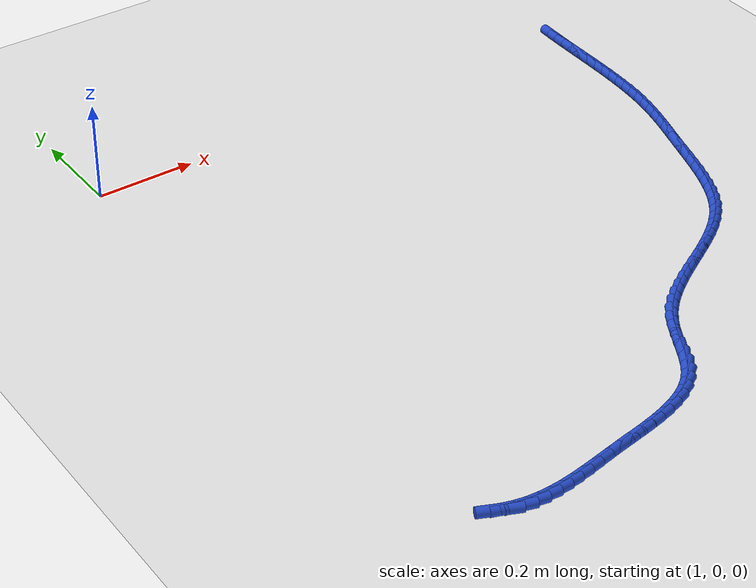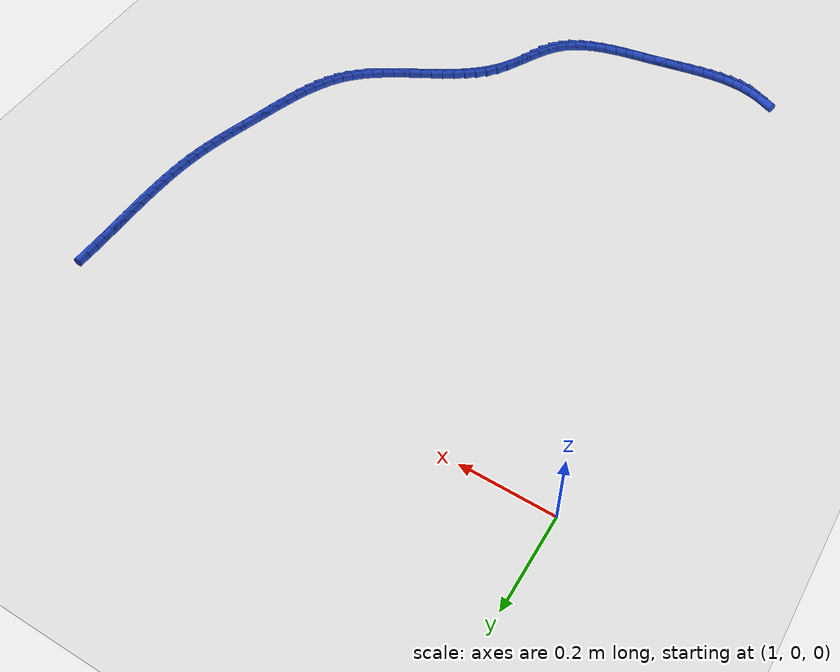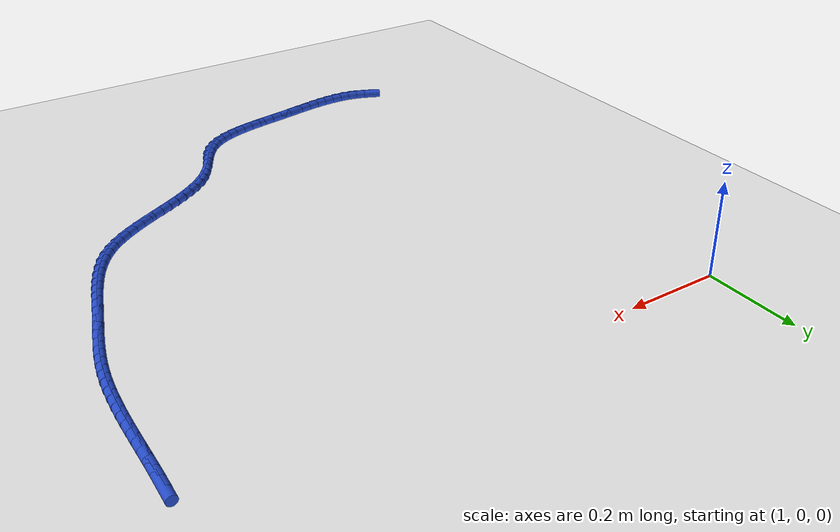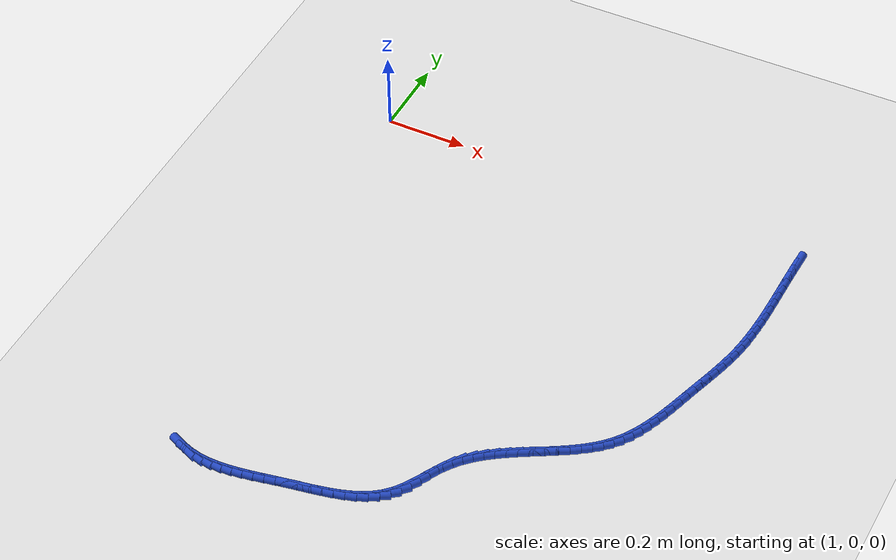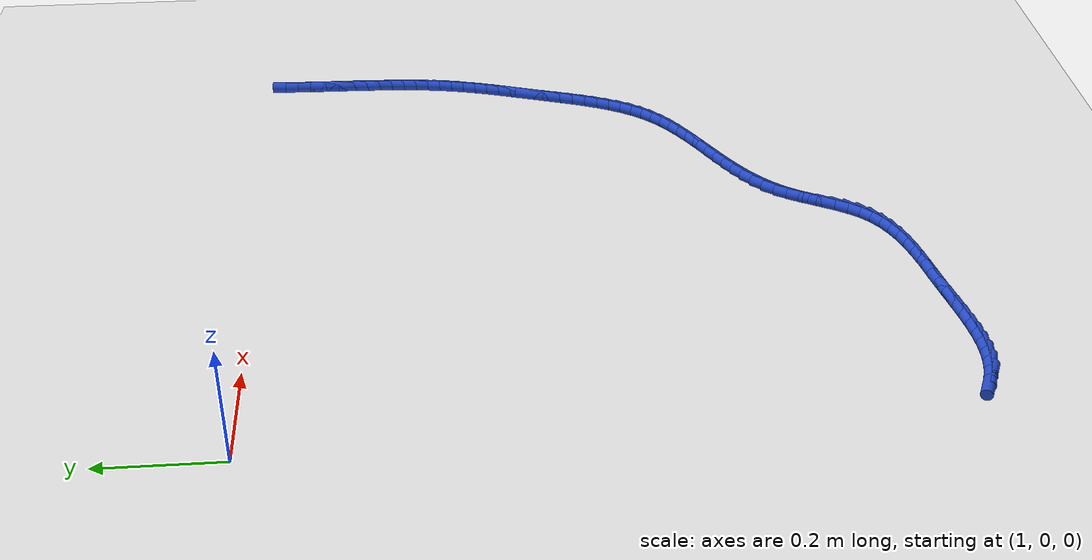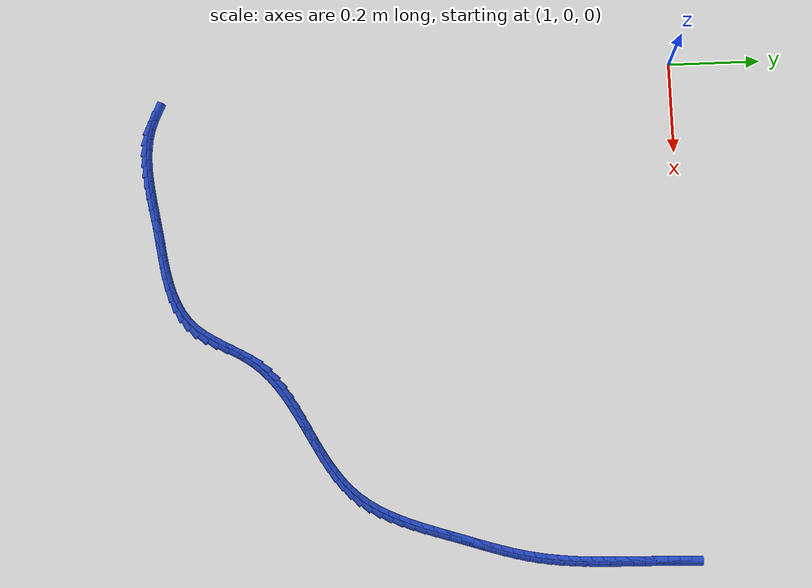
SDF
<sdf version="1.6">
 <world name="default">
  <model name="ground_plane">
   <static>1</static>
   <link name="link">
    <collision name="collision">
     <geometry><plane><normal>0 0 1</normal><size>100 100</size></plane></geometry>
     <surface><friction><ode><mu>100</mu><mu2>50</mu2></ode></friction></surface>
    </collision>
    <visual name="visual">
     <cast_shadows>0</cast_shadows>
     <geometry><plane><normal>0 0 1</normal><size>100 100</size></plane></geometry>
     <material>
      <script><uri>file://media/materials/scripts/gazebo.material</uri><name>Gazebo/WhiteGlow</name></script>
     </material>
    </visual>
   </link>
  </model>
  <model name="line">
   <link name="link_139">
    <pose>2.0775391839590873 -0.03220333190274801 0.01 0 1.57 1.5355002800685045</pose>
    <collision name="collision">
     <geometry><cylinder><radius>0.01</radius><length>0.08</length></cylinder></geometry>
    </collision>
    <visual name="visual">
     <material>
      <script><name>Gazebo/Blue</name><uri>file://media/materials/scripts/gazebo.material</uri></script>
     </material>
     <geometry><cylinder><radius>0.01</radius><length>0.08</length></cylinder></geometry>
    </visual>
   </link>
   <link name="link_140">
    <pose>2.076674300582202 -0.05669684511033682 0.01 0 1.57 1.545032274725076</pose>
    <collision name="collision">
     <geometry><cylinder><radius>0.01</radius><length>0.08</length></cylinder></geometry>
    </collision>
    <visual name="visual">
     <material>
      <script><name>Gazebo/Blue</name><uri>file://media/materials/scripts/gazebo.material</uri></script>
     </material>
     <geometry><cylinder><radius>0.01</radius><length>0.08</length></cylinder></geometry>
    </visual>
   </link>
   <link name="link_141">
    <pose>2.0760451497285883 -0.08111115845253375 0.01 0 1.57 1.5508849439960424</pose>
    <collision name="collision">
     <geometry><cylinder><radius>0.01</radius><length>0.08</length></cylinder></geometry>
    </collision>
    <visual name="visual">
     <material>
      <script><name>Gazebo/Blue</name><uri>file://media/materials/scripts/gazebo.material</uri></script>
     </material>
     <geometry><cylinder><radius>0.01</radius><length>0.08</length></cylinder></geometry>
    </visual>
   </link>
   <link name="link_142">
    <pose>2.0755606096063643 -0.10544277275186079 0.01 0 1.57 1.553019532442318</pose>
    <collision name="collision">
     <geometry><cylinder><radius>0.01</radius><length>0.08</length></cylinder></geometry>
    </collision>
    <visual name="visual">
     <material>
      <script><name>Gazebo/Blue</name><uri>file://media/materials/scripts/gazebo.material</uri></script>
     </material>
     <geometry><cylinder><radius>0.01</radius><length>0.08</length></cylinder></geometry>
    </visual>
   </link>
   <link name="link_143">
    <pose>2.0751295584236495 -0.1296881888308394 0.01 0 1.57 1.551396149108338</pose>
    <collision name="collision">
     <geometry><cylinder><radius>0.01</radius><length>0.08</length></cylinder></geometry>
    </collision>
    <visual name="visual">
     <material>
      <script><name>Gazebo/Blue</name><uri>file://media/materials/scripts/gazebo.material</uri></script>
     </material>
     <geometry><cylinder><radius>0.01</radius><length>0.08</length></cylinder></geometry>
    </visual>
   </link>
   <link name="link_144">
    <pose>2.0746608743885617 -0.15384390751199115 0.01 0 1.57 1.54597282921778</pose>
    <collision name="collision">
     <geometry><cylinder><radius>0.01</radius><length>0.08</length></cylinder></geometry>
    </collision>
    <visual name="visual">
     <material>
      <script><name>Gazebo/Blue</name><uri>file://media/materials/scripts/gazebo.material</uri></script>
     </material>
     <geometry><cylinder><radius>0.01</radius><length>0.08</length></cylinder></geometry>
    </visual>
   </link>
   <link name="link_145">
    <pose>2.0740634357092205 -0.1779064296178375 0.01 0 1.57 1.5367061824393409</pose>
    <collision name="collision">
     <geometry><cylinder><radius>0.01</radius><length>0.08</length></cylinder></geometry>
    </collision>
    <visual name="visual">
     <material>
      <script><name>Gazebo/Blue</name><uri>file://media/materials/scripts/gazebo.material</uri></script>
     </material>
     <geometry><cylinder><radius>0.01</radius><length>0.08</length></cylinder></geometry>
    </visual>
   </link>
   <link name="link_146">
    <pose>2.073246120593743 -0.20187225597090072 0.01 0 1.57 1.5235537550019442</pose>
    <collision name="collision">
     <geometry><cylinder><radius>0.01</radius><length>0.08</length></cylinder></geometry>
    </collision>
    <visual name="visual">
     <material>
      <script><name>Gazebo/Blue</name><uri>file://media/materials/scripts/gazebo.material</uri></script>
     </material>
     <geometry><cylinder><radius>0.01</radius><length>0.08</length></cylinder></geometry>
    </visual>
   </link>
   <link name="link_147">
    <pose>2.0721178072502493 -0.22573788739370096 0.01 0 1.57 1.5064782374561976</pose>
    <collision name="collision">
     <geometry><cylinder><radius>0.01</radius><length>0.08</length></cylinder></geometry>
    </collision>
    <visual name="visual">
     <material>
      <script><name>Gazebo/Blue</name><uri>file://media/materials/scripts/gazebo.material</uri></script>
     </material>
     <geometry><cylinder><radius>0.01</radius><length>0.08</length></cylinder></geometry>
    </visual>
   </link>
   <link name="link_148">
    <pose>2.070587373886858 -0.24949982470876042 0.01 0 1.57 1.485453626714104</pose>
    <collision name="collision">
     <geometry><cylinder><radius>0.01</radius><length>0.08</length></cylinder></geometry>
    </collision>
    <visual name="visual">
     <material>
      <script><name>Gazebo/Blue</name><uri>file://media/materials/scripts/gazebo.material</uri></script>
     </material>
     <geometry><cylinder><radius>0.01</radius><length>0.08</length></cylinder></geometry>
    </visual>
   </link>
   <link name="link_149">
    <pose>2.0685636987116873 -0.2731545687386006 0.01 0 1.57 1.4604733762494457</pose>
    <collision name="collision">
     <geometry><cylinder><radius>0.01</radius><length>0.08</length></cylinder></geometry>
    </collision>
    <visual name="visual">
     <material>
      <script><name>Gazebo/Blue</name><uri>file://media/materials/scripts/gazebo.material</uri></script>
     </material>
     <geometry><cylinder><radius>0.01</radius><length>0.08</length></cylinder></geometry>
    </visual>
   </link>
   <link name="link_150">
    <pose>2.0659556599328552 -0.296698620305743 0.01 0 1.57 1.4315604168281433</pose>
    <collision name="collision">
     <geometry><cylinder><radius>0.01</radius><length>0.08</length></cylinder></geometry>
    </collision>
    <visual name="visual">
     <material>
      <script><name>Gazebo/Blue</name><uri>file://media/materials/scripts/gazebo.material</uri></script>
     </material>
     <geometry><cylinder><radius>0.01</radius><length>0.08</length></cylinder></geometry>
    </visual>
   </link>
   <link name="link_151">
    <pose>2.0626721357584814 -0.32012848023270923 0.01 0 1.57 1.3987786811830403</pose>
    <collision name="collision">
     <geometry><cylinder><radius>0.01</radius><length>0.08</length></cylinder></geometry>
    </collision>
    <visual name="visual">
     <material>
      <script><name>Gazebo/Blue</name><uri>file://media/materials/scripts/gazebo.material</uri></script>
     </material>
     <geometry><cylinder><radius>0.01</radius><length>0.08</length></cylinder></geometry>
    </visual>
   </link>
   <link name="link_152">
    <pose>2.0586220043966845 -0.3434406493420209 0.01 0 1.57 1.3626208358620544</pose>
    <collision name="collision">
     <geometry><cylinder><radius>0.01</radius><length>0.08</length></cylinder></geometry>
    </collision>
    <visual name="visual">
     <material>
      <script><name>Gazebo/Blue</name><uri>file://media/materials/scripts/gazebo.material</uri></script>
     </material>
     <geometry><cylinder><radius>0.01</radius><length>0.08</length></cylinder></geometry>
    </visual>
   </link>
   <link name="link_153">
    <pose>2.053722782564876 -0.36663379234015386 0.01 0 1.57 1.3287862352375683</pose>
    <collision name="collision">
     <geometry><cylinder><radius>0.01</radius><length>0.08</length></cylinder></geometry>
    </collision>
    <visual name="visual">
     <material>
      <script><name>Gazebo/Blue</name><uri>file://media/materials/scripts/gazebo.material</uri></script>
     </material>
     <geometry><cylinder><radius>0.01</radius><length>0.08</length></cylinder></geometry>
    </visual>
   </link>
   <link name="link_154">
    <pose>2.0480194273327155 -0.38973849681796874 0.01 0 1.57 1.3015933561688129</pose>
    <collision name="collision">
     <geometry><cylinder><radius>0.01</radius><length>0.08</length></cylinder></geometry>
    </collision>
    <visual name="visual">
     <material>
      <script><name>Gazebo/Blue</name><uri>file://media/materials/scripts/gazebo.material</uri></script>
     </material>
     <geometry><cylinder><radius>0.01</radius><length>0.08</length></cylinder></geometry>
    </visual>
   </link>
   <link name="link_155">
    <pose>2.04165407835824 -0.41280969390020805 0.01 0 1.57 1.2811367406665357</pose>
    <collision name="collision">
     <geometry><cylinder><radius>0.01</radius><length>0.08</length></cylinder></geometry>
    </collision>
    <visual name="visual">
     <material>
      <script><name>Gazebo/Blue</name><uri>file://media/materials/scripts/gazebo.material</uri></script>
     </material>
     <geometry><cylinder><radius>0.01</radius><length>0.08</length></cylinder></geometry>
    </visual>
   </link>
   <link name="link_156">
    <pose>2.0347713225355504 -0.4359029277265058 0.01 0 1.57 1.2673337371733688</pose>
    <collision name="collision">
     <geometry><cylinder><radius>0.01</radius><length>0.08</length></cylinder></geometry>
    </collision>
    <visual name="visual">
     <material>
      <script><name>Gazebo/Blue</name><uri>file://media/materials/scripts/gazebo.material</uri></script>
     </material>
     <geometry><cylinder><radius>0.01</radius><length>0.08</length></cylinder></geometry>
    </visual>
   </link>
   <link name="link_157">
    <pose>2.0275157467587466 -0.4590737424364981 0.01 0 1.57 1.2600603318563652</pose>
    <collision name="collision">
     <geometry><cylinder><radius>0.01</radius><length>0.08</length></cylinder></geometry>
    </collision>
    <visual name="visual">
     <material>
      <script><name>Gazebo/Blue</name><uri>file://media/materials/scripts/gazebo.material</uri></script>
     </material>
     <geometry><cylinder><radius>0.01</radius><length>0.08</length></cylinder></geometry>
    </visual>
   </link>
   <link name="link_158">
    <pose>2.0200319379219294 -0.4823776821698201 0.01 0 1.57 1.2591708801061767</pose>
    <collision name="collision">
     <geometry><cylinder><radius>0.01</radius><length>0.08</length></cylinder></geometry>
    </collision>
    <visual name="visual">
     <material>
      <script><name>Gazebo/Blue</name><uri>file://media/materials/scripts/gazebo.material</uri></script>
     </material>
     <geometry><cylinder><radius>0.01</radius><length>0.08</length></cylinder></geometry>
    </visual>
   </link>
   <link name="link_159">
    <pose>2.0124644829191993 -0.5058702910661071 0.01 0 1.57 1.2622192892705426</pose>
    <collision name="collision">
     <geometry><cylinder><radius>0.01</radius><length>0.08</length></cylinder></geometry>
    </collision>
    <visual name="visual">
     <material>
      <script><name>Gazebo/Blue</name><uri>file://media/materials/scripts/gazebo.material</uri></script>
     </material>
     <geometry><cylinder><radius>0.01</radius><length>0.08</length></cylinder></geometry>
    </visual>
   </link>
   <link name="link_160">
    <pose>2.004909489875562 -0.5295715424775642 0.01 0 1.57 1.258407226383134</pose>
    <collision name="collision">
     <geometry><cylinder><radius>0.01</radius><length>0.08</length></cylinder></geometry>
    </collision>
    <visual name="visual">
     <material>
      <script><name>Gazebo/Blue</name><uri>file://media/materials/scripts/gazebo.material</uri></script>
     </material>
     <geometry><cylinder><radius>0.01</radius><length>0.08</length></cylinder></geometry>
    </visual>
   </link>
   <link name="link_161">
    <pose>1.9972350444321931 -0.5533341006548441 0.01 0 1.57 1.2445957591847026</pose>
    <collision name="collision">
     <geometry><cylinder><radius>0.01</radius><length>0.08</length></cylinder></geometry>
    </collision>
    <visual name="visual">
     <material>
      <script><name>Gazebo/Blue</name><uri>file://media/materials/scripts/gazebo.material</uri></script>
     </material>
     <geometry><cylinder><radius>0.01</radius><length>0.08</length></cylinder></geometry>
    </visual>
   </link>
   <link name="link_162">
    <pose>1.9892422512758807 -0.5769614832771217 0.01 0 1.57 1.2205522472653871</pose>
    <collision name="collision">
     <geometry><cylinder><radius>0.01</radius><length>0.08</length></cylinder></geometry>
    </collision>
    <visual name="visual">
     <material>
      <script><name>Gazebo/Blue</name><uri>file://media/materials/scripts/gazebo.material</uri></script>
     </material>
     <geometry><cylinder><radius>0.01</radius><length>0.08</length></cylinder></geometry>
    </visual>
   </link>
   <link name="link_163">
    <pose>1.9807322061201604 -0.600257201439544 0.01 0 1.57 1.1857856594052478</pose>
    <collision name="collision">
     <geometry><cylinder><radius>0.01</radius><length>0.08</length></cylinder></geometry>
    </collision>
    <visual name="visual">
     <material>
      <script><name>Gazebo/Blue</name><uri>file://media/materials/scripts/gazebo.material</uri></script>
     </material>
     <geometry><cylinder><radius>0.01</radius><length>0.08</length></cylinder></geometry>
    </visual>
   </link>
   <link name="link_164">
    <pose>1.9715060046785686 -0.6230247662372582 0.01 0 1.57 1.139600762035238</pose>
    <collision name="collision">
     <geometry><cylinder><radius>0.01</radius><length>0.08</length></cylinder></geometry>
    </collision>
    <visual name="visual">
     <material>
      <script><name>Gazebo/Blue</name><uri>file://media/materials/scripts/gazebo.material</uri></script>
     </material>
     <geometry><cylinder><radius>0.01</radius><length>0.08</length></cylinder></geometry>
    </visual>
   </link>
   <link name="link_165">
    <pose>1.9613647426646423 -0.6450676887654099 0.01 0 1.57 1.0811976610575593</pose>
    <collision name="collision">
     <geometry><cylinder><radius>0.01</radius><length>0.08</length></cylinder></geometry>
    </collision>
    <visual name="visual">
     <material>
      <script><name>Gazebo/Blue</name><uri>file://media/materials/scripts/gazebo.material</uri></script>
     </material>
     <geometry><cylinder><radius>0.01</radius><length>0.08</length></cylinder></geometry>
    </visual>
   </link>
   <link name="link_166">
    <pose>1.950109515791918 -0.6661894801191464 0.01 0 1.57 1.0098463058577707</pose>
    <collision name="collision">
     <geometry><cylinder><radius>0.01</radius><length>0.08</length></cylinder></geometry>
    </collision>
    <visual name="visual">
     <material>
      <script><name>Gazebo/Blue</name><uri>file://media/materials/scripts/gazebo.material</uri></script>
     </material>
     <geometry><cylinder><radius>0.01</radius><length>0.08</length></cylinder></geometry>
    </visual>
   </link>
   <link name="link_167">
    <pose>1.9375414197739327 -0.6861936513936149 0.01 0 1.57 0.9251645269403953</pose>
    <collision name="collision">
     <geometry><cylinder><radius>0.01</radius><length>0.08</length></cylinder></geometry>
    </collision>
    <visual name="visual">
     <material>
      <script><name>Gazebo/Blue</name><uri>file://media/materials/scripts/gazebo.material</uri></script>
     </material>
     <geometry><cylinder><radius>0.01</radius><length>0.08</length></cylinder></geometry>
    </visual>
   </link>
   <link name="link_168">
    <pose>1.9234615503242205 -0.7048837136839615 0.01 0 1.57 0.8289185407658971</pose>
    <collision name="collision">
     <geometry><cylinder><radius>0.01</radius><length>0.08</length></cylinder></geometry>
    </collision>
    <visual name="visual">
     <material>
      <script><name>Gazebo/Blue</name><uri>file://media/materials/scripts/gazebo.material</uri></script>
     </material>
     <geometry><cylinder><radius>0.01</radius><length>0.08</length></cylinder></geometry>
    </visual>
   </link>
   <link name="link_169">
    <pose>1.9076949464159982 -0.7220860446262474 0.01 0 1.57 0.737883611921408</pose>
    <collision name="collision">
     <geometry><cylinder><radius>0.01</radius><length>0.08</length></cylinder></geometry>
    </collision>
    <visual name="visual">
     <material>
      <script><name>Gazebo/Blue</name><uri>file://media/materials/scripts/gazebo.material</uri></script>
     </material>
     <geometry><cylinder><radius>0.01</radius><length>0.08</length></cylinder></geometry>
    </visual>
   </link>
   <link name="link_170">
    <pose>1.8903278553949685 -0.7378764837935013 0.01 0 1.57 0.6626194449607979</pose>
    <collision name="collision">
     <geometry><cylinder><radius>0.01</radius><length>0.08</length></cylinder></geometry>
    </collision>
    <visual name="visual">
     <material>
      <script><name>Gazebo/Blue</name><uri>file://media/materials/scripts/gazebo.material</uri></script>
     </material>
     <geometry><cylinder><radius>0.01</radius><length>0.08</length></cylinder></geometry>
    </visual>
   </link>
   <link name="link_171">
    <pose>1.8716072524811669 -0.752484370765178 0.01 0 1.57 0.6032243968950222</pose>
    <collision name="collision">
     <geometry><cylinder><radius>0.01</radius><length>0.08</length></cylinder></geometry>
    </collision>
    <visual name="visual">
     <material>
      <script><name>Gazebo/Blue</name><uri>file://media/materials/scripts/gazebo.material</uri></script>
     </material>
     <geometry><cylinder><radius>0.01</radius><length>0.08</length></cylinder></geometry>
    </visual>
   </link>
   <link name="link_172">
    <pose>1.8517824623460715 -0.7661412889182881 0.01 0 1.57 0.5590425453800866</pose>
    <collision name="collision">
     <geometry><cylinder><radius>0.01</radius><length>0.08</length></cylinder></geometry>
    </collision>
    <visual name="visual">
     <material>
      <script><name>Gazebo/Blue</name><uri>file://media/materials/scripts/gazebo.material</uri></script>
     </material>
     <geometry><cylinder><radius>0.01</radius><length>0.08</length></cylinder></geometry>
    </visual>
   </link>
   <link name="link_173">
    <pose>1.8311028096611601 -0.7790788216298427 0.01 0 1.57 0.5292433574666835</pose>
    <collision name="collision">
     <geometry><cylinder><radius>0.01</radius><length>0.08</length></cylinder></geometry>
    </collision>
    <visual name="visual">
     <material>
      <script><name>Gazebo/Blue</name><uri>file://media/materials/scripts/gazebo.material</uri></script>
     </material>
     <geometry><cylinder><radius>0.01</radius><length>0.08</length></cylinder></geometry>
    </visual>
   </link>
   <link name="link_174">
    <pose>1.809817619097913 -0.7915285522768527 0.01 0 1.57 0.5130990096089181</pose>
    <collision name="collision">
     <geometry><cylinder><radius>0.01</radius><length>0.08</length></cylinder></geometry>
    </collision>
    <visual name="visual">
     <material>
      <script><name>Gazebo/Blue</name><uri>file://media/materials/scripts/gazebo.material</uri></script>
     </material>
     <geometry><cylinder><radius>0.01</radius><length>0.08</length></cylinder></geometry>
    </visual>
   </link>
   <link name="link_175">
    <pose>1.788176215327809 -0.8037220642363291 0.01 0 1.57 0.5101323687475845</pose>
    <collision name="collision">
     <geometry><cylinder><radius>0.01</radius><length>0.08</length></cylinder></geometry>
    </collision>
    <visual name="visual">
     <material>
      <script><name>Gazebo/Blue</name><uri>file://media/materials/scripts/gazebo.material</uri></script>
     </material>
     <geometry><cylinder><radius>0.01</radius><length>0.08</length></cylinder></geometry>
    </visual>
   </link>
   <link name="link_176">
    <pose>1.7664279230223257 -0.8158909408852828 0.01 0 1.57 0.5201790116440431</pose>
    <collision name="collision">
     <geometry><cylinder><radius>0.01</radius><length>0.08</length></cylinder></geometry>
    </collision>
    <visual name="visual">
     <material>
      <script><name>Gazebo/Blue</name><uri>file://media/materials/scripts/gazebo.material</uri></script>
     </material>
     <geometry><cylinder><radius>0.01</radius><length>0.08</length></cylinder></geometry>
    </visual>
   </link>
   <link name="link_177">
    <pose>1.744822066852942 -0.8282667656007251 0.01 0 1.57 0.5433914946528634</pose>
    <collision name="collision">
     <geometry><cylinder><radius>0.01</radius><length>0.08</length></cylinder></geometry>
    </collision>
    <visual name="visual">
     <material>
      <script><name>Gazebo/Blue</name><uri>file://media/materials/scripts/gazebo.material</uri></script>
     </material>
     <geometry><cylinder><radius>0.01</radius><length>0.08</length></cylinder></geometry>
    </visual>
   </link>
   <link name="link_178">
    <pose>1.723607971491137 -0.8410811217596668 0.01 0 1.57 0.5801932835814058</pose>
    <collision name="collision">
     <geometry><cylinder><radius>0.01</radius><length>0.08</length></cylinder></geometry>
    </collision>
    <visual name="visual">
     <material>
      <script><name>Gazebo/Blue</name><uri>file://media/materials/scripts/gazebo.material</uri></script>
     </material>
     <geometry><cylinder><radius>0.01</radius><length>0.08</length></cylinder></geometry>
    </visual>
   </link>
   <link name="link_179">
    <pose>1.7030349616083886 -0.8545655927391189 0.01 0 1.57 0.6311698282599272</pose>
    <collision name="collision">
     <geometry><cylinder><radius>0.01</radius><length>0.08</length></cylinder></geometry>
    </collision>
    <visual name="visual">
     <material>
      <script><name>Gazebo/Blue</name><uri>file://media/materials/scripts/gazebo.material</uri></script>
     </material>
     <geometry><cylinder><radius>0.01</radius><length>0.08</length></cylinder></geometry>
    </visual>
   </link>
   <link name="link_180">
    <pose>1.683352361876177 -0.8689517619160925 0.01 0 1.57 0.6968689083508087</pose>
    <collision name="collision">
     <geometry><cylinder><radius>0.01</radius><length>0.08</length></cylinder></geometry>
    </collision>
    <visual name="visual">
     <material>
      <script><name>Gazebo/Blue</name><uri>file://media/materials/scripts/gazebo.material</uri></script>
     </material>
     <geometry><cylinder><radius>0.01</radius><length>0.08</length></cylinder></geometry>
    </visual>
   </link>
   <link name="link_181">
    <pose>1.6648094969659788 -0.884471212667599 0.01 0 1.57 0.7774810377116422</pose>
    <collision name="collision">
     <geometry><cylinder><radius>0.01</radius><length>0.08</length></cylinder></geometry>
    </collision>
    <visual name="visual">
     <material>
      <script><name>Gazebo/Blue</name><uri>file://media/materials/scripts/gazebo.material</uri></script>
     </material>
     <geometry><cylinder><radius>0.01</radius><length>0.08</length></cylinder></geometry>
    </visual>
   </link>
   <link name="link_182">
    <pose>1.6476556915492744 -0.9013555283706487 0.01 0 1.57 0.8724037042691793</pose>
    <collision name="collision">
     <geometry><cylinder><radius>0.01</radius><length>0.08</length></cylinder></geometry>
    </collision>
    <visual name="visual">
     <material>
      <script><name>Gazebo/Blue</name><uri>file://media/materials/scripts/gazebo.material</uri></script>
     </material>
     <geometry><cylinder><radius>0.01</radius><length>0.08</length></cylinder></geometry>
    </visual>
   </link>
   <link name="link_183">
    <pose>1.632140270297542 -0.9198362924022525 0.01 0 1.57 0.9733969931477915</pose>
    <collision name="collision">
     <geometry><cylinder><radius>0.01</radius><length>0.08</length></cylinder></geometry>
    </collision>
    <visual name="visual">
     <material>
      <script><name>Gazebo/Blue</name><uri>file://media/materials/scripts/gazebo.material</uri></script>
     </material>
     <geometry><cylinder><radius>0.01</radius><length>0.08</length></cylinder></geometry>
    </visual>
   </link>
   <link name="link_184">
    <pose>1.618402681897759 -0.9400289568873078 0.01 0 1.57 1.0437210126781897</pose>
    <collision name="collision">
     <geometry><cylinder><radius>0.01</radius><length>0.08</length></cylinder></geometry>
    </collision>
    <visual name="visual">
     <material>
      <script><name>Gazebo/Blue</name><uri>file://media/materials/scripts/gazebo.material</uri></script>
     </material>
     <geometry><cylinder><radius>0.01</radius><length>0.08</length></cylinder></geometry>
    </visual>
   </link>
   <link name="link_185">
    <pose>1.6059661806572607 -0.9613976994690445 0.01 0 1.57 1.0733737373059842</pose>
    <collision name="collision">
     <geometry><cylinder><radius>0.01</radius><length>0.08</length></cylinder></geometry>
    </collision>
    <visual name="visual">
     <material>
      <script><name>Gazebo/Blue</name><uri>file://media/materials/scripts/gazebo.material</uri></script>
     </material>
     <geometry><cylinder><radius>0.01</radius><length>0.08</length></cylinder></geometry>
    </visual>
   </link>
   <link name="link_186">
    <pose>1.5941393538905448 -0.9831798097516113 0.01 0 1.57 1.0636329344201696</pose>
    <collision name="collision">
     <geometry><cylinder><radius>0.01</radius><length>0.08</length></cylinder></geometry>
    </collision>
    <visual name="visual">
     <material>
      <script><name>Gazebo/Blue</name><uri>file://media/materials/scripts/gazebo.material</uri></script>
     </material>
     <geometry><cylinder><radius>0.01</radius><length>0.08</length></cylinder></geometry>
    </visual>
   </link>
   <link name="link_187">
    <pose>1.5822305695687928 -1.004612345508568 0.01 0 1.57 1.0128214416811105</pose>
    <collision name="collision">
     <geometry><cylinder><radius>0.01</radius><length>0.08</length></cylinder></geometry>
    </collision>
    <visual name="visual">
     <material>
      <script><name>Gazebo/Blue</name><uri>file://media/materials/scripts/gazebo.material</uri></script>
     </material>
     <geometry><cylinder><radius>0.01</radius><length>0.08</length></cylinder></geometry>
    </visual>
   </link>
   <link name="link_188">
    <pose>1.5695481956631863 -1.0249323645134765 0.01 0 1.57 0.9164826047007845</pose>
    <collision name="collision">
     <geometry><cylinder><radius>0.01</radius><length>0.08</length></cylinder></geometry>
    </collision>
    <visual name="visual">
     <material>
      <script><name>Gazebo/Blue</name><uri>file://media/materials/scripts/gazebo.material</uri></script>
     </material>
     <geometry><cylinder><radius>0.01</radius><length>0.08</length></cylinder></geometry>
    </visual>
   </link>
   <link name="link_189">
    <pose>1.555400600144907 -1.043376924539897 0.01 0 1.57 0.7738148037518656</pose>
    <collision name="collision">
     <geometry><cylinder><radius>0.01</radius><length>0.08</length></cylinder></geometry>
    </collision>
    <visual name="visual">
     <material>
      <script><name>Gazebo/Blue</name><uri>file://media/materials/scripts/gazebo.material</uri></script>
     </material>
     <geometry><cylinder><radius>0.01</radius><length>0.08</length></cylinder></geometry>
    </visual>
   </link>
   <link name="link_190">
    <pose>1.5391551635620218 -1.0592503007226748 0.01 0 1.57 0.6246043138045071</pose>
    <collision name="collision">
     <geometry><cylinder><radius>0.01</radius><length>0.08</length></cylinder></geometry>
    </collision>
    <visual name="visual">
     <material>
      <script><name>Gazebo/Blue</name><uri>file://media/materials/scripts/gazebo.material</uri></script>
     </material>
     <geometry><cylinder><radius>0.01</radius><length>0.08</length></cylinder></geometry>
    </visual>
   </link>
   <link name="link_191">
    <pose>1.520756137933327 -1.072513844706591 0.01 0 1.57 0.4964365567068031</pose>
    <collision name="collision">
     <geometry><cylinder><radius>0.01</radius><length>0.08</length></cylinder></geometry>
    </collision>
    <visual name="visual">
     <material>
      <script><name>Gazebo/Blue</name><uri>file://media/materials/scripts/gazebo.material</uri></script>
     </material>
     <geometry><cylinder><radius>0.01</radius><length>0.08</length></cylinder></geometry>
    </visual>
   </link>
   <link name="link_192">
    <pose>1.500473925928525 -1.0835004049815427 0.01 0 1.57 0.3918786052235479</pose>
    <collision name="collision">
     <geometry><cylinder><radius>0.01</radius><length>0.08</length></cylinder></geometry>
    </collision>
    <visual name="visual">
     <material>
      <script><name>Gazebo/Blue</name><uri>file://media/materials/scripts/gazebo.material</uri></script>
     </material>
     <geometry><cylinder><radius>0.01</radius><length>0.08</length></cylinder></geometry>
    </visual>
   </link>
   <link name="link_193">
    <pose>1.478582627819861 -1.0925470417343053 0.01 0 1.57 0.3101466506657408</pose>
    <collision name="collision">
     <geometry><cylinder><radius>0.01</radius><length>0.08</length></cylinder></geometry>
    </collision>
    <visual name="visual">
     <material>
      <script><name>Gazebo/Blue</name><uri>file://media/materials/scripts/gazebo.material</uri></script>
     </material>
     <geometry><cylinder><radius>0.01</radius><length>0.08</length></cylinder></geometry>
    </visual>
   </link>
   <link name="link_194">
    <pose>1.455356343879581 -1.0999908151516566 0.01 0 1.57 0.24908901791433832</pose>
    <collision name="collision">
     <geometry><cylinder><radius>0.01</radius><length>0.08</length></cylinder></geometry>
    </collision>
    <visual name="visual">
     <material>
      <script><name>Gazebo/Blue</name><uri>file://media/materials/scripts/gazebo.material</uri></script>
     </material>
     <geometry><cylinder><radius>0.01</radius><length>0.08</length></cylinder></geometry>
    </visual>
   </link>
   <link name="link_195">
    <pose>1.4310691743799302 -1.106168785420374 0.01 0 1.57 0.20636937124967708</pose>
    <collision name="collision">
     <geometry><cylinder><radius>0.01</radius><length>0.08</length></cylinder></geometry>
    </collision>
    <visual name="visual">
     <material>
      <script><name>Gazebo/Blue</name><uri>file://media/materials/scripts/gazebo.material</uri></script>
     </material>
     <geometry><cylinder><radius>0.01</radius><length>0.08</length></cylinder></geometry>
    </visual>
   </link>
   <link name="link_196">
    <pose>1.4059952195931547 -1.1114180127272333 0.01 0 1.57 0.18005885326797844</pose>
    <collision name="collision">
     <geometry><cylinder><radius>0.01</radius><length>0.08</length></cylinder></geometry>
    </collision>
    <visual name="visual">
     <material>
      <script><name>Gazebo/Blue</name><uri>file://media/materials/scripts/gazebo.material</uri></script>
     </material>
     <geometry><cylinder><radius>0.01</radius><length>0.08</length></cylinder></geometry>
    </visual>
   </link>
   <link name="link_197">
    <pose>1.3804085797915002 -1.1160755572590122 0.01 0 1.57 0.1688655805879732</pose>
    <collision name="collision">
     <geometry><cylinder><radius>0.01</radius><length>0.08</length></cylinder></geometry>
    </collision>
    <visual name="visual">
     <material>
      <script><name>Gazebo/Blue</name><uri>file://media/materials/scripts/gazebo.material</uri></script>
     </material>
     <geometry><cylinder><radius>0.01</radius><length>0.08</length></cylinder></geometry>
    </visual>
   </link>
   <link name="link_198">
    <pose>1.3545833552472117 -1.1204784792024869 0.01 0 1.57 0.17213761717225615</pose>
    <collision name="collision">
     <geometry><cylinder><radius>0.01</radius><length>0.08</length></cylinder></geometry>
    </collision>
    <visual name="visual">
     <material>
      <script><name>Gazebo/Blue</name><uri>file://media/materials/scripts/gazebo.material</uri></script>
     </material>
     <geometry><cylinder><radius>0.01</radius><length>0.08</length></cylinder></geometry>
    </visual>
   </link>
   <link name="link_199">
    <pose>1.3287930959624021 -1.1249623282300478 0.01 0 1.57 0.1818171857528789</pose>
    <collision name="collision">
     <geometry><cylinder><radius>0.01</radius><length>0.08</length></cylinder></geometry>
    </collision>
    <visual name="visual">
     <material>
      <script><name>Gazebo/Blue</name><uri>file://media/materials/scripts/gazebo.material</uri></script>
     </material>
     <geometry><cylinder><radius>0.01</radius><length>0.08</length></cylinder></geometry>
    </visual>
   </link>
   <link name="link_200">
    <pose>1.3032377504524204 -1.1296606148734434 0.01 0 1.57 0.18172864064149494</pose>
    <collision name="collision">
     <geometry><cylinder><radius>0.01</radius><length>0.08</length></cylinder></geometry>
    </collision>
    <visual name="visual">
     <material>
      <script><name>Gazebo/Blue</name><uri>file://media/materials/scripts/gazebo.material</uri></script>
     </material>
     <geometry><cylinder><radius>0.01</radius><length>0.08</length></cylinder></geometry>
    </visual>
   </link>
   <link name="link_201">
    <pose>1.2779703824000772 -1.1343036446933983 0.01 0 1.57 0.16954976127611435</pose>
    <collision name="collision">
     <geometry><cylinder><radius>0.01</radius><length>0.08</length></cylinder></geometry>
    </collision>
    <visual name="visual">
     <material>
      <script><name>Gazebo/Blue</name><uri>file://media/materials/scripts/gazebo.material</uri></script>
     </material>
     <geometry><cylinder><radius>0.01</radius><length>0.08</length></cylinder></geometry>
    </visual>
   </link>
   <link name="link_202">
    <pose>1.2530266161906742 -1.1385738516540536 0.01 0 1.57 0.1445963260358575</pose>
    <collision name="collision">
     <geometry><cylinder><radius>0.01</radius><length>0.08</length></cylinder></geometry>
    </collision>
    <visual name="visual">
     <material>
      <script><name>Gazebo/Blue</name><uri>file://media/materials/scripts/gazebo.material</uri></script>
     </material>
     <geometry><cylinder><radius>0.01</radius><length>0.08</length></cylinder></geometry>
    </visual>
   </link>
   <link name="link_203">
    <pose>1.2284420762095132 -1.14215366971955 0.01 0 1.57 0.10592271155001726</pose>
    <collision name="collision">
     <geometry><cylinder><radius>0.01</radius><length>0.08</length></cylinder></geometry>
    </collision>
    <visual name="visual">
     <material>
      <script><name>Gazebo/Blue</name><uri>file://media/materials/scripts/gazebo.material</uri></script>
     </material>
     <geometry><cylinder><radius>0.01</radius><length>0.08</length></cylinder></geometry>
    </visual>
   </link>
   <link name="link_204">
    <pose>1.2042523868418942 -1.1447255328540276 0.01 0 1.57 0.05240917569512367</pose>
    <collision name="collision">
     <geometry><cylinder><radius>0.01</radius><length>0.08</length></cylinder></geometry>
    </collision>
    <visual name="visual">
     <material>
      <script><name>Gazebo/Blue</name><uri>file://media/materials/scripts/gazebo.material</uri></script>
     </material>
     <geometry><cylinder><radius>0.01</radius><length>0.08</length></cylinder></geometry>
    </visual>
   </link>
   <link name="link_205">
    <pose>1.1804931724731191 -1.145971875021627 0.01 0 1.57 -0.017031061543790436</pose>
    <collision name="collision">
     <geometry><cylinder><radius>0.01</radius><length>0.08</length></cylinder></geometry>
    </collision>
    <visual name="visual">
     <material>
      <script><name>Gazebo/Blue</name><uri>file://media/materials/scripts/gazebo.material</uri></script>
     </material>
     <geometry><cylinder><radius>0.01</radius><length>0.08</length></cylinder></geometry>
    </visual>
   </link>
   <link name="link_206">
    <pose>1.1572000574884886 -1.145575130186489 0.01 0 1.57 -0.1030671848967342</pose>
    <collision name="collision">
     <geometry><cylinder><radius>0.01</radius><length>0.08</length></cylinder></geometry>
    </collision>
    <visual name="visual">
     <material>
      <script><name>Gazebo/Blue</name><uri>file://media/materials/scripts/gazebo.material</uri></script>
     </material>
     <geometry><cylinder><radius>0.01</radius><length>0.08</length></cylinder></geometry>
    </visual>
   </link>
   <link name="link_207">
    <pose>1.1344086662733042 -1.143217732312754 0.01 0 1.57 -0.20536773938971814</pose>
    <collision name="collision">
     <geometry><cylinder><radius>0.01</radius><length>0.08</length></cylinder></geometry>
    </collision>
    <visual name="visual">
     <material>
      <script><name>Gazebo/Blue</name><uri>file://media/materials/scripts/gazebo.material</uri></script>
     </material>
     <geometry><cylinder><radius>0.01</radius><length>0.08</length></cylinder></geometry>
    </visual>
   </link>
   <link name="link_208">
    <pose>1.1121546232128667 -1.1385821153645626 0.01 0 1.57 -0.31720519586208773</pose>
    <collision name="collision">
     <geometry><cylinder><radius>0.01</radius><length>0.08</length></cylinder></geometry>
    </collision>
    <visual name="visual">
     <material>
      <script><name>Gazebo/Blue</name><uri>file://media/materials/scripts/gazebo.material</uri></script>
     </material>
     <geometry><cylinder><radius>0.01</radius><length>0.08</length></cylinder></geometry>
    </visual>
   </link>
   <link name="link_209">
    <pose>1.0904540976538153 -1.131458038096032 0.01 0 1.57 -0.41548709061643924</pose>
    <collision name="collision">
     <geometry><cylinder><radius>0.01</radius><length>0.08</length></cylinder></geometry>
    </collision>
    <visual name="visual">
     <material>
      <script><name>Gazebo/Blue</name><uri>file://media/materials/scripts/gazebo.material</uri></script>
     </material>
     <geometry><cylinder><radius>0.01</radius><length>0.08</length></cylinder></geometry>
    </visual>
   </link>
  </model>
 </world>
</sdf>
